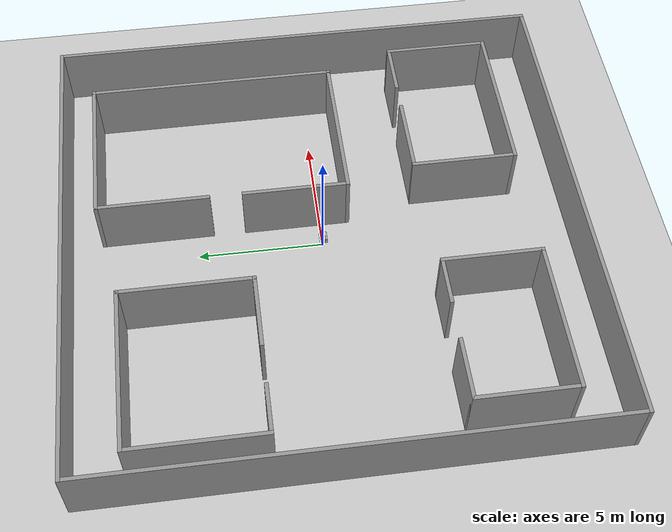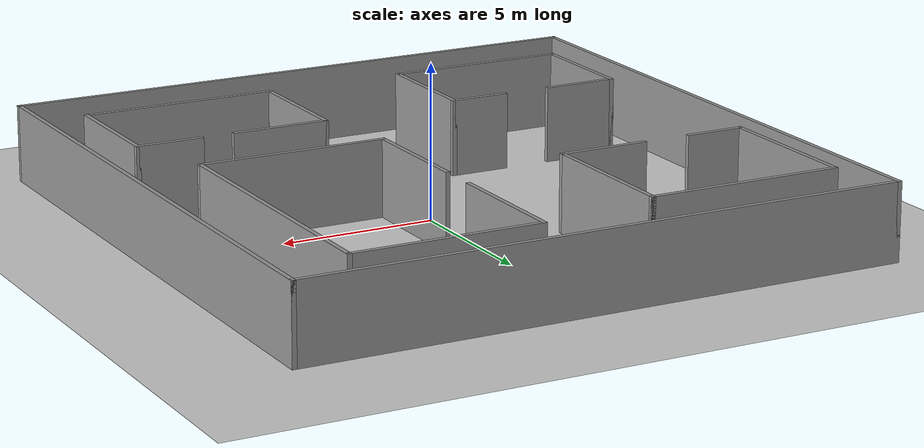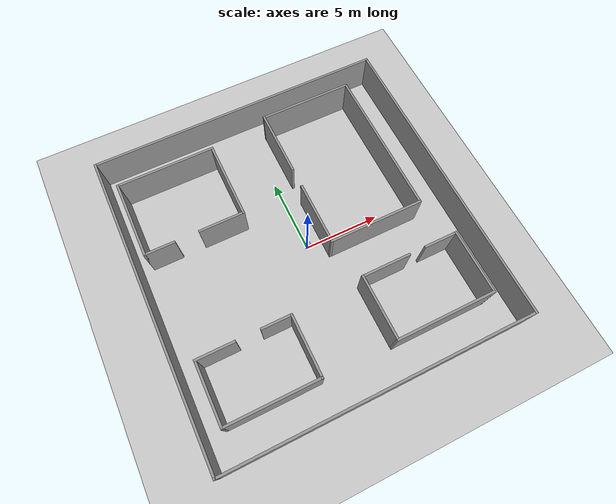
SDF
<sdf version="1.6">
 <world name="default">
  <light name="sun" type="directional">
   <pose>0 0 10 0 -0 0</pose>
   <diffuse>0.8 0.8 0.8 1</diffuse>
   <specular>0.2 0.2 0.2 1</specular>
   <attenuation>
    <range>1000</range>
    <constant>0.9</constant>
    <linear>0.01</linear>
    <quadratic>0.001</quadratic>
   </attenuation>
   <direction>-0.5 0.1 -0.9</direction>
  </light>
  <model name="animated_box">
   <pose>0 0 0.5 0 0 0</pose>
   <link name="link">
    <collision name="animated_box_collision"><geometry><box><size>0.4 0.2 0.2</size></box></geometry></collision>
    <visual name="visual"><geometry><box><size>0.4 0.2 0.2</size></box></geometry></visual>
    <inertial>
     <inertia><ixx>1</ixx><ixy>0</ixy><ixz>0</ixz><iyy>1</iyy><iyz>0</iyz><izz>1</izz></inertia>
     <mass>1</mass>
    </inertial>
    <gravity>0</gravity>
   </link>
   <plugin name="push_animate" filename="libbox_forward_movement7.so"/>
  </model>
  <model name="animated_box2">
   <pose>0 0 0.5 0 0 0</pose>
   <link name="link">
    <collision name="animated_box_collision2"><geometry><box><size>0.4 0.3 0.2</size></box></geometry></collision>
    <visual name="visual"><geometry><box><size>0.4 0.3 0.2</size></box></geometry></visual>
    <inertial>
     <inertia><ixx>1</ixx><ixy>0</ixy><ixz>0</ixz><iyy>1</iyy><iyz>0</iyz><izz>1</izz></inertia>
     <mass>1</mass>
    </inertial>
    <gravity>0</gravity>
   </link>
   <plugin name="push_animate2" filename="libbox_clockwise_movement2.so"/>
  </model>
  <model name="animated_box3">
   <pose>0 0 0.5 0 0 0</pose>
   <link name="link">
    <collision name="animated_box_collision3"><geometry><box><size>0.2 0.2 0.2</size></box></geometry></collision>
    <visual name="visual"><geometry><box><size>0.2 0.2 0.2</size></box></geometry></visual>
    <inertial>
     <inertia><ixx>1</ixx><ixy>0</ixy><ixz>0</ixz><iyy>1</iyy><iyz>0</iyz><izz>1</izz></inertia>
     <mass>1</mass>
    </inertial>
    <gravity>0</gravity>
   </link>
   <plugin name="push_animate3" filename="libbox_clockwise_movement3.so"/>
  </model>
  <model name="ground_plane">
   <static>1</static>
   <link name="link">
    <collision name="collision">
     <geometry><plane><normal>0 0 1</normal><size>100 100</size></plane></geometry>
     <surface><friction><ode><mu>100</mu><mu2>50</mu2></ode></friction></surface>
    </collision>
    <visual name="visual">
     <cast_shadows>0</cast_shadows>
     <geometry><plane><normal>0 0 1</normal><size>100 100</size></plane></geometry>
     <material>
      <script><uri>file://media/materials/scripts/gazebo.material</uri><name>Gazebo/Grey</name></script>
     </material>
    </visual>
   </link>
  </model>
  <gravity>0 0 -9.8</gravity>
  <magnetic_field>6e-06 2.3e-05 -4.2e-05</magnetic_field>
  <atmosphere type="adiabatic"/>
  <physics name="default_physics" default="0" type="ode">
   <max_step_size>0.001</max_step_size>
   <real_time_factor>1</real_time_factor>
   <real_time_update_rate>1000</real_time_update_rate>
  </physics>
  <scene><ambient>0.4 0.4 0.4 1</ambient><background>0.7 0.7 0.7 1</background><shadows>1</shadows></scene>
  <audio><device>default</device></audio>
  <spherical_coordinates>
   <surface_model>EARTH_WGS84</surface_model>
   <latitude_deg>0</latitude_deg>
   <longitude_deg>0</longitude_deg>
   <elevation>0</elevation>
   <heading_deg>0</heading_deg>
  </spherical_coordinates>
  <model name="room">
   <pose>-0.308934 0.030223 0 0 -0 0</pose>
   <link name="Wall_0">
    <collision name="Wall_0_Collision">
     <geometry><box><size>19.75 0.15 2.5</size></box></geometry>
     <pose>0 0 1.25 0 -0 0</pose>
    </collision>
    <visual name="Wall_0_Visual">
     <pose>0 0 1.25 0 -0 0</pose>
     <geometry><box><size>19.75 0.15 2.5</size></box></geometry>
     <material>
      <script><uri>file://media/materials/scripts/gazebo.material</uri><name>Gazebo/Grey</name></script>
      <ambient>1 1 1 1</ambient>
     </material>
     <meta><layer>0</layer></meta>
    </visual>
    <pose>-0 -10.05 0 0 -0 3.14159</pose>
   </link>
   <link name="Wall_2">
    <collision name="Wall_2_Collision">
     <geometry><box><size>20.25 0.15 2.5</size></box></geometry>
     <pose>0 0 1.25 0 -0 0</pose>
    </collision>
    <visual name="Wall_2_Visual">
     <pose>0 0 1.25 0 -0 0</pose>
     <geometry><box><size>20.25 0.15 2.5</size></box></geometry>
     <material>
      <script><uri>file://media/materials/scripts/gazebo.material</uri><name>Gazebo/Grey</name></script>
      <ambient>1 1 1 1</ambient>
     </material>
     <meta><layer>0</layer></meta>
    </visual>
    <pose>-9.8 0 0 0 -0 1.5708</pose>
   </link>
   <link name="Wall_3">
    <collision name="Wall_3_Collision">
     <geometry><box><size>19.75 0.15 2.5</size></box></geometry>
     <pose>0 0 1.25 0 -0 0</pose>
    </collision>
    <visual name="Wall_3_Visual">
     <pose>0 0 1.25 0 -0 0</pose>
     <geometry><box><size>19.75 0.15 2.5</size></box></geometry>
     <material>
      <script><uri>file://media/materials/scripts/gazebo.material</uri><name>Gazebo/Grey</name></script>
      <ambient>1 1 1 1</ambient>
     </material>
     <meta><layer>0</layer></meta>
    </visual>
    <pose>-0 10.05 0 0 -0 0</pose>
   </link>
   <link name="Wall_4">
    <collision name="Wall_4_Collision">
     <geometry><box><size>20.25 0.15 2.5</size></box></geometry>
     <pose>0 0 1.25 0 -0 0</pose>
    </collision>
    <visual name="Wall_4_Visual">
     <pose>0 0 1.25 0 -0 0</pose>
     <geometry><box><size>20.25 0.15 2.5</size></box></geometry>
     <material>
      <script><uri>file://media/materials/scripts/gazebo.material</uri><name>Gazebo/Grey</name></script>
      <ambient>1 1 1 1</ambient>
     </material>
     <meta><layer>0</layer></meta>
    </visual>
    <pose>9.8 0 0 0 -0 -1.5708</pose>
   </link>
   <static>1</static>
  </model>
  <model name="room5">
   <pose>-0.625699 0.385354 0 0 -0 0</pose>
   <link name="Wall_10">
    <collision name="Wall_10_Collision">
     <geometry><box><size>6.5 0.15 2.5</size></box></geometry>
     <pose>0 0 1.25 0 -0 0</pose>
    </collision>
    <visual name="Wall_10_Visual">
     <pose>0 0 1.25 0 -0 0</pose>
     <geometry><box><size>6.5 0.15 2.5</size></box></geometry>
     <material>
      <script><uri>file://media/materials/scripts/gazebo.material</uri><name>Gazebo/Grey</name></script>
      <ambient>1 1 1 1</ambient>
     </material>
     <meta><layer>0</layer></meta>
    </visual>
    <pose>5.49095 -8.35113 0 0 -0 0</pose>
   </link>
   <link name="Wall_11">
    <collision name="Wall_11_Collision">
     <geometry><box><size>4.25 0.15 2.5</size></box></geometry>
     <pose>0 0 1.25 0 -0 0</pose>
    </collision>
    <visual name="Wall_11_Visual">
     <pose>0 0 1.25 0 -0 0</pose>
     <geometry><box><size>4.25 0.15 2.5</size></box></geometry>
     <material>
      <script><uri>file://media/materials/scripts/gazebo.material</uri><name>Gazebo/Grey</name></script>
      <ambient>1 1 1 1</ambient>
     </material>
     <meta><layer>0</layer></meta>
    </visual>
    <pose>8.66595 -6.30113 0 0 -0 1.5708</pose>
   </link>
   <link name="Wall_12">
    <collision name="Wall_12_Collision">
     <geometry><box><size>2.25 0.15 2.5</size></box></geometry>
     <pose>0 0 1.25 0 -0 0</pose>
    </collision>
    <visual name="Wall_12_Visual">
     <pose>0 0 1.25 0 -0 0</pose>
     <geometry><box><size>2.25 0.15 2.5</size></box></geometry>
     <material>
      <script><uri>file://media/materials/scripts/gazebo.material</uri><name>Gazebo/Grey</name></script>
      <ambient>1 1 1 1</ambient>
     </material>
     <meta><layer>0</layer></meta>
    </visual>
    <pose>7.61595 -4.25113 0 0 -0 3.14159</pose>
   </link>
   <link name="Wall_14">
    <collision name="Wall_14_Collision">
     <geometry><box><size>4.25 0.15 2.5</size></box></geometry>
     <pose>0 0 1.25 0 -0 0</pose>
    </collision>
    <visual name="Wall_14_Visual">
     <pose>0 0 1.25 0 -0 0</pose>
     <geometry><box><size>4.25 0.15 2.5</size></box></geometry>
     <material>
      <script><uri>file://media/materials/scripts/gazebo.material</uri><name>Gazebo/Grey</name></script>
      <ambient>1 1 1 1</ambient>
     </material>
     <meta><layer>0</layer></meta>
    </visual>
    <pose>2.31595 -6.30113 0 0 -0 1.5708</pose>
   </link>
   <link name="Wall_15">
    <collision name="Wall_15_Collision">
     <geometry><box><size>3.25 0.15 2.5</size></box></geometry>
     <pose>0 0 1.25 0 -0 0</pose>
    </collision>
    <visual name="Wall_15_Visual">
     <pose>0 0 1.25 0 -0 0</pose>
     <geometry><box><size>3.25 0.15 2.5</size></box></geometry>
     <material>
      <script><uri>file://media/materials/scripts/gazebo.material</uri><name>Gazebo/Grey</name></script>
      <ambient>1 1 1 1</ambient>
     </material>
     <meta><layer>0</layer></meta>
    </visual>
    <pose>3.86595 -4.25113 0 0 -0 0</pose>
   </link>
   <link name="Wall_17">
    <collision name="Wall_17_Collision">
     <geometry><box><size>6.5 0.15 2.5</size></box></geometry>
     <pose>0 0 1.25 0 -0 0</pose>
    </collision>
    <visual name="Wall_17_Visual">
     <pose>0 0 1.25 0 -0 0</pose>
     <geometry><box><size>6.5 0.15 2.5</size></box></geometry>
     <material>
      <script><uri>file://media/materials/scripts/gazebo.material</uri><name>Gazebo/Grey</name></script>
      <ambient>1 1 1 1</ambient>
     </material>
     <meta><layer>0</layer></meta>
    </visual>
    <pose>-5.49094 7.64756 0 0 -0 0</pose>
   </link>
   <link name="Wall_18">
    <collision name="Wall_18_Collision">
     <geometry><box><size>5.25 0.15 2.5</size></box></geometry>
     <pose>0 0 1.25 0 -0 0</pose>
    </collision>
    <visual name="Wall_18_Visual">
     <pose>0 0 1.25 0 -0 0</pose>
     <geometry><box><size>5.25 0.15 2.5</size></box></geometry>
     <material>
      <script><uri>file://media/materials/scripts/gazebo.material</uri><name>Gazebo/Grey</name></script>
      <ambient>1 1 1 1</ambient>
     </material>
     <meta><layer>0</layer></meta>
    </visual>
    <pose>-2.31595 5.09756 0 0 -0 -1.5708</pose>
   </link>
   <link name="Wall_19">
    <collision name="Wall_19_Collision">
     <geometry><box><size>3 0.15 2.5</size></box></geometry>
     <pose>0 0 1.25 0 -0 0</pose>
    </collision>
    <visual name="Wall_19_Visual">
     <pose>0 0 1.25 0 -0 0</pose>
     <geometry><box><size>3 0.15 2.5</size></box></geometry>
     <material>
      <script><uri>file://media/materials/scripts/gazebo.material</uri><name>Gazebo/Grey</name></script>
      <ambient>1 1 1 1</ambient>
     </material>
     <meta><layer>0</layer></meta>
    </visual>
    <pose>-3.74094 2.54756 0 0 -0 3.14159</pose>
   </link>
   <link name="Wall_2">
    <collision name="Wall_2_Collision">
     <geometry><box><size>6 0.15 2.5</size></box></geometry>
     <pose>0 0 1.25 0 -0 0</pose>
    </collision>
    <visual name="Wall_2_Visual">
     <pose>0 0 1.25 0 -0 0</pose>
     <geometry><box><size>6 0.15 2.5</size></box></geometry>
     <material>
      <script><uri>file://media/materials/scripts/gazebo.material</uri><name>Gazebo/Grey</name></script>
      <ambient>1 1 1 1</ambient>
     </material>
     <meta><layer>0</layer></meta>
    </visual>
    <pose>-5.31268 -8.35113 0 0 -0 0</pose>
   </link>
   <link name="Wall_21">
    <collision name="Wall_21_Collision">
     <geometry><box><size>5.25 0.15 2.5</size></box></geometry>
     <pose>0 0 1.25 0 -0 0</pose>
    </collision>
    <visual name="Wall_21_Visual">
     <pose>0 0 1.25 0 -0 0</pose>
     <geometry><box><size>5.25 0.15 2.5</size></box></geometry>
     <material>
      <script><uri>file://media/materials/scripts/gazebo.material</uri><name>Gazebo/Grey</name></script>
      <ambient>1 1 1 1</ambient>
     </material>
     <meta><layer>0</layer></meta>
    </visual>
    <pose>-8.66595 5.09756 0 0 -0 -1.5708</pose>
   </link>
   <link name="Wall_22">
    <collision name="Wall_22_Collision">
     <geometry><box><size>2 0.15 2.5</size></box></geometry>
     <pose>0 0 1.25 0 -0 0</pose>
    </collision>
    <visual name="Wall_22_Visual">
     <pose>0 0 1.25 0 -0 0</pose>
     <geometry><box><size>2 0.15 2.5</size></box></geometry>
     <material>
      <script><uri>file://media/materials/scripts/gazebo.material</uri><name>Gazebo/Grey</name></script>
      <ambient>1 1 1 1</ambient>
     </material>
     <meta><layer>0</layer></meta>
    </visual>
    <pose>-7.74094 2.54756 0 0 -0 0</pose>
   </link>
   <link name="Wall_24">
    <collision name="Wall_24_Collision">
     <geometry><box><size>10 0.15 2.5</size></box></geometry>
     <pose>0 0 1.25 0 -0 0</pose>
    </collision>
    <visual name="Wall_24_Visual">
     <pose>0 0 1.25 0 -0 0</pose>
     <geometry><box><size>10 0.15 2.5</size></box></geometry>
     <material>
      <script><uri>file://media/materials/scripts/gazebo.material</uri><name>Gazebo/Grey</name></script>
      <ambient>1 1 1 1</ambient>
     </material>
     <meta><layer>0</layer></meta>
    </visual>
    <pose>7.7916 3.42613 0 0 -0 -1.5708</pose>
   </link>
   <link name="Wall_25">
    <collision name="Wall_25_Collision">
     <geometry><box><size>6.25 0.15 2.5</size></box></geometry>
     <pose>0 0 1.25 0 -0 0</pose>
    </collision>
    <visual name="Wall_25_Visual">
     <pose>0 0 1.25 0 -0 0</pose>
     <geometry><box><size>6.25 0.15 2.5</size></box></geometry>
     <material>
      <script><uri>file://media/materials/scripts/gazebo.material</uri><name>Gazebo/Grey</name></script>
      <ambient>1 1 1 1</ambient>
     </material>
     <meta><layer>0</layer></meta>
    </visual>
    <pose>4.7416 -1.49887 0 0 -0 3.14159</pose>
   </link>
   <link name="Wall_26">
    <collision name="Wall_26_Collision">
     <geometry><box><size>4.25 0.15 2.5</size></box></geometry>
     <pose>0 0 1.25 0 -0 0</pose>
    </collision>
    <visual name="Wall_26_Visual">
     <pose>0 0 1.25 0 -0 0</pose>
     <geometry><box><size>4.25 0.15 2.5</size></box></geometry>
     <material>
      <script><uri>file://media/materials/scripts/gazebo.material</uri><name>Gazebo/Grey</name></script>
      <ambient>1 1 1 1</ambient>
     </material>
     <meta><layer>0</layer></meta>
    </visual>
    <pose>1.6916 0.551132 0 0 -0 1.5708</pose>
   </link>
   <link name="Wall_28">
    <collision name="Wall_28_Collision">
     <geometry><box><size>6.25 0.15 2.5</size></box></geometry>
     <pose>0 0 1.25 0 -0 0</pose>
    </collision>
    <visual name="Wall_28_Visual">
     <pose>0 0 1.25 0 -0 0</pose>
     <geometry><box><size>6.25 0.15 2.5</size></box></geometry>
     <material>
      <script><uri>file://media/materials/scripts/gazebo.material</uri><name>Gazebo/Grey</name></script>
      <ambient>1 1 1 1</ambient>
     </material>
     <meta><layer>0</layer></meta>
    </visual>
    <pose>4.7416 8.35113 0 0 -0 3.14159</pose>
   </link>
   <link name="Wall_29">
    <collision name="Wall_29_Collision">
     <geometry><box><size>4.5 0.15 2.5</size></box></geometry>
     <pose>0 0 1.25 0 -0 0</pose>
    </collision>
    <visual name="Wall_29_Visual">
     <pose>0 0 1.25 0 -0 0</pose>
     <geometry><box><size>4.5 0.15 2.5</size></box></geometry>
     <material>
      <script><uri>file://media/materials/scripts/gazebo.material</uri><name>Gazebo/Grey</name></script>
      <ambient>1 1 1 1</ambient>
     </material>
     <meta><layer>0</layer></meta>
    </visual>
    <pose>1.6916 6.17613 0 0 -0 -1.5708</pose>
   </link>
   <link name="Wall_4">
    <collision name="Wall_4_Collision">
     <geometry><box><size>4 0.15 2.5</size></box></geometry>
     <pose>0 0 1.25 0 -0 0</pose>
    </collision>
    <visual name="Wall_4_Visual">
     <pose>0 0 1.25 0 -0 0</pose>
     <geometry><box><size>4 0.15 2.5</size></box></geometry>
     <material>
      <script><uri>file://media/materials/scripts/gazebo.material</uri><name>Gazebo/Grey</name></script>
      <ambient>1 1 1 1</ambient>
     </material>
     <meta><layer>0</layer></meta>
    </visual>
    <pose>-8.23768 -6.42613 0 0 -0 1.5708</pose>
   </link>
   <link name="Wall_5">
    <collision name="Wall_5_Collision">
     <geometry><box><size>2.5 0.15 2.5</size></box></geometry>
     <pose>0 0 1.25 0 -0 0</pose>
    </collision>
    <visual name="Wall_5_Visual">
     <pose>0 0 1.25 0 -0 0</pose>
     <geometry><box><size>2.5 0.15 2.5</size></box></geometry>
     <material>
      <script><uri>file://media/materials/scripts/gazebo.material</uri><name>Gazebo/Grey</name></script>
      <ambient>1 1 1 1</ambient>
     </material>
     <meta><layer>0</layer></meta>
    </visual>
    <pose>-7.06268 -4.50113 0 0 -0 0</pose>
   </link>
   <link name="Wall_7">
    <collision name="Wall_7_Collision">
     <geometry><box><size>4 0.15 2.5</size></box></geometry>
     <pose>0 0 1.25 0 -0 0</pose>
    </collision>
    <visual name="Wall_7_Visual">
     <pose>0 0 1.25 0 -0 0</pose>
     <geometry><box><size>4 0.15 2.5</size></box></geometry>
     <material>
      <script><uri>file://media/materials/scripts/gazebo.material</uri><name>Gazebo/Grey</name></script>
      <ambient>1 1 1 1</ambient>
     </material>
     <meta><layer>0</layer></meta>
    </visual>
    <pose>-2.38768 -6.42613 0 0 -0 1.5708</pose>
   </link>
   <link name="Wall_8">
    <collision name="Wall_8_Collision">
     <geometry><box><size>2 0.15 2.5</size></box></geometry>
     <pose>0 0 1.25 0 -0 0</pose>
    </collision>
    <visual name="Wall_8_Visual">
     <pose>0 0 1.25 0 -0 0</pose>
     <geometry><box><size>2 0.15 2.5</size></box></geometry>
     <material>
      <script><uri>file://media/materials/scripts/gazebo.material</uri><name>Gazebo/Grey</name></script>
      <ambient>1 1 1 1</ambient>
     </material>
     <meta><layer>0</layer></meta>
    </visual>
    <pose>-3.31268 -4.50113 0 0 -0 3.14159</pose>
   </link>
   <static>1</static>
  </model>
 </world>
</sdf>
